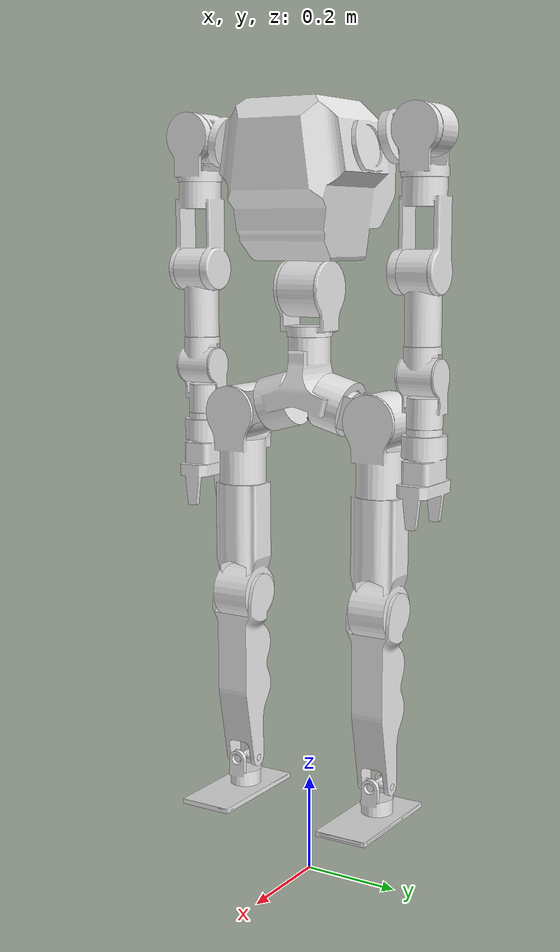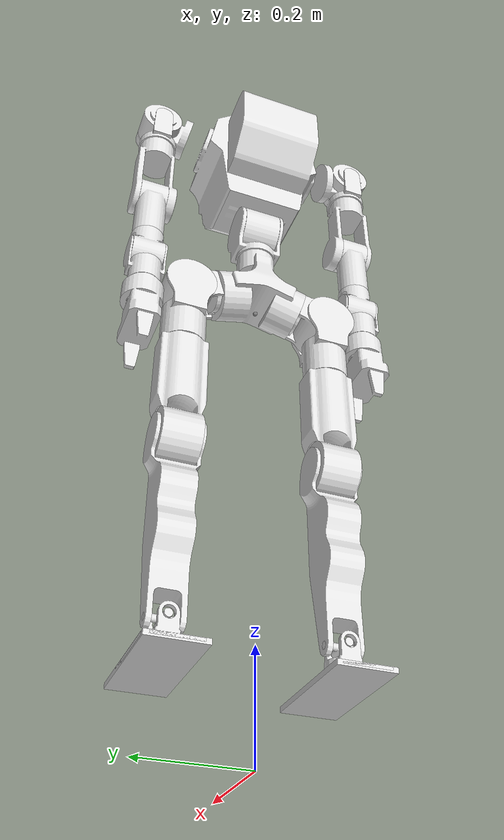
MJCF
<?xml version='1.0' encoding='utf-8'?>
<mujoco model="RBH_SCH_v1">
  <compiler angle="radian" coordinate="local" />
  <visual>
    <headlight diffuse="0.6 0.6 0.6" ambient="0.3 0.3 0.3" specular="0 0 0" />
    <rgba haze="0.15 0.25 0.35 1" />
    <global azimuth="120" elevation="-20" />
  </visual>
  <asset>
    <texture type="skybox" builtin="gradient" rgb1="0.3 0.5 0.7" rgb2="0 0 0" width="512" height="3072" />
    <texture type="2d" name="groundplane" builtin="checker" mark="edge" rgb1="0.2 0.3 0.4" rgb2="0.1 0.2 0.3" markrgb="0.8 0.8 0.8" width="300" height="300" />
    <material name="groundplane" texture="groundplane" texuniform="true" texrepeat="5 5" reflectance="0.2" />
    <material name="robot" rgba="0.9 0.9 0.9 1" shininess="0.3" specular="0.3" />
    <mesh name="pelvis_mesh" file="../meshes/RBH_SCH_v1/RBH_SCH_v1_CenterPelvis.STL" />
    <mesh name="right_hip_pitch_link_mesh" file="../meshes/RBH_SCH_v1/RBH_SCH_v1_Pelvis_R.STL" />
    <mesh name="right_hip_roll_link_mesh" file="../meshes/RBH_SCH_v1/RBH_SCH_v1_Hip_R.STL" />
    <mesh name="right_hip_yaw_link_mesh" file="../meshes/RBH_SCH_v1/RBH_SCH_v1_Thigh_R.STL" />
    <mesh name="right_knee_pitch_link_mesh" file="../meshes/RBH_SCH_v1/RBH_SCH_v1_Calf_R.STL" />
    <mesh name="right_ankle_pitch_link_mesh" file="../meshes/RBH_SCH_v1/RBH_SCH_v1_Ankle_R.STL" />
    <mesh name="right_ankle_roll_link_mesh" file="../meshes/RBH_SCH_v1/RBH_SCH_v1_Foot_R.STL" />
    <mesh name="left_hip_pitch_link_mesh" file="../meshes/RBH_SCH_v1/RBH_SCH_v1_Pelvis_L.STL" />
    <mesh name="left_hip_roll_link_mesh" file="../meshes/RBH_SCH_v1/RBH_SCH_v1_Hip_L.STL" />
    <mesh name="left_hip_yaw_link_mesh" file="../meshes/RBH_SCH_v1/RBH_SCH_v1_Thigh_L.STL" />
    <mesh name="left_knee_pitch_link_mesh" file="../meshes/RBH_SCH_v1/RBH_SCH_v1_Calf_L.STL" />
    <mesh name="left_ankle_pitch_link_mesh" file="../meshes/RBH_SCH_v1/RBH_SCH_v1_Ankle_L.STL" />
    <mesh name="left_ankle_roll_link_mesh" file="../meshes/RBH_SCH_v1/RBH_SCH_v1_Foot_L.STL" />
    <mesh name="waist_yaw_link_mesh" file="../meshes/RBH_SCH_v1/RBH_SCH_v1_WaistYaw.STL" />
    <mesh name="torso_link_mesh" file="../meshes/RBH_SCH_v1/RBH_SCH_v1_Body.STL" />
    <mesh name="right_shoulder_pitch_link_mesh" file="../meshes/RBH_SCH_v1/RBH_SCH_v1_ShoulderPitch_R.STL" />
    <mesh name="right_shoulder_roll_link_mesh" file="../meshes/RBH_SCH_v1/RBH_SCH_v1_ShoulderRoll_R.STL" />
    <mesh name="right_shoulder_yaw_link_mesh" file="../meshes/RBH_SCH_v1/RBH_SCH_v1_ShoulderYaw_R.STL" />
    <mesh name="right_elbow_pitch_link_mesh" file="../meshes/RBH_SCH_v1/RBH_SCH_v1_Elbow_R.STL" />
    <mesh name="right_wrist_yaw_link_mesh" file="../meshes/RBH_SCH_v1/RBH_SCH_v1_WristYaw_R.STL" />
    <mesh name="right_wrist_pitch_link_mesh" file="../meshes/RBH_SCH_v1/RBH_SCH_v1_WristPitch_R.STL" />
    <mesh name="right_wrist_yaw2_link_mesh" file="../meshes/RBH_SCH_v1/RBH_SCH_v1_WristYaw2_R.STL" />
    <mesh name="left_shoulder_pitch_link_mesh" file="../meshes/RBH_SCH_v1/RBH_SCH_v1_ShoulderPitch_L.STL" />
    <mesh name="left_shoulder_roll_link_mesh" file="../meshes/RBH_SCH_v1/RBH_SCH_v1_ShoulderRoll_L.STL" />
    <mesh name="left_shoulder_yaw_link_mesh" file="../meshes/RBH_SCH_v1/RBH_SCH_v1_ShoulderYaw_L.STL" />
    <mesh name="left_elbow_pitch_link_mesh" file="../meshes/RBH_SCH_v1/RBH_SCH_v1_Elbow_L.STL" />
    <mesh name="left_wrist_yaw_link_mesh" file="../meshes/RBH_SCH_v1/RBH_SCH_v1_WristYaw_L.STL" />
    <mesh name="left_wrist_pitch_link_mesh" file="../meshes/RBH_SCH_v1/RBH_SCH_v1_WristPitch_L.STL" />
    <mesh name="left_wrist_yaw2_link_mesh" file="../meshes/RBH_SCH_v1/RBH_SCH_v1_WristYaw2_L.STL" />
  </asset>
  <default>
    <joint damping="0" armature="0.03" />
    <geom friction="1.2 0.005 0.0001" solref="0.02 1" solimp="0.9 0.95 0.001" material="robot" />
  </default>
  <worldbody>
    <light pos="0 0 1.5" dir="0 0 -1" directional="true" />
    <body name="pelvis" pos="0 0 1">
      <freejoint name="root" />
      <inertial pos="-0.00025 0.0 0.00679" mass="4.94274" fullinertia="0.032293 0.017582 0.022194 -0.000000 -0.000062 0.000001" />
      <geom name="pelvis_collision" type="mesh" mesh="pelvis_mesh" contype="1" conaffinity="0" />
      <site name="PelvisIMU" pos="0 0 -0.048" />
      <body name="right_hip_pitch_link" pos="0.0 -0.1603 -0.043">
        <joint name="right_hip_pitch_joint" type="hinge" axis="0 0.966 0.259" range="-2.6180 2.6180" armature="0.115659" />
        <inertial pos="-0.00875 0.0008 -0.00114" mass="2.25728" fullinertia="0.003686 0.003248 0.003180 0.000015 -0.000014 0.000026" />
        <geom name="right_hip_pitch_link_collision" type="mesh" mesh="right_hip_pitch_link_mesh" contype="1" conaffinity="0" />
        <body name="right_hip_roll_link" pos="0.0 0.0 0.0">
          <joint name="right_hip_roll_joint" type="hinge" axis="1 0 0" range="-2.3562 0.4800" armature="0.115659" />
          <inertial pos="-0.00019 0.0 -0.11235" mass="1.69514" fullinertia="0.001841 0.001827 0.001917 0.000000 -0.000007 -0.000000" />
          <geom name="right_hip_roll_link_collision" type="mesh" mesh="right_hip_roll_link_mesh" contype="1" conaffinity="0" />
          <body name="right_hip_yaw_link" pos="0.0 0.0 -0.378">
            <joint name="right_hip_yaw_joint" type="hinge" axis="0 0 1" range="-2.6180 2.6180" armature="0.047529" />
            <inertial pos="0.0003 -0.00578 0.02455" mass="2.41833" fullinertia="0.010971 0.011379 0.003241 0.000004 0.000084 0.000330" />
            <geom name="right_hip_yaw_link_collision" type="mesh" mesh="right_hip_yaw_link_mesh" contype="1" conaffinity="0" />
            <body name="right_knee_pitch_link" pos="0.0 0.0 0.0">
              <joint name="right_knee_pitch_joint" type="hinge" axis="0 1 0" range="-0.0873 2.1817" armature="0.115659" />
              <inertial pos="-0.00426 0.00057 -0.1723" mass="3.3053" fullinertia="0.022720 0.023141 0.004393 -0.000103 0.001182 0.000494" />
              <geom name="right_knee_pitch_link_collision" type="mesh" mesh="right_knee_pitch_link_mesh" contype="1" conaffinity="0" />
              <body name="right_ankle_pitch_link" pos="0.0 0.0 -0.36">
                <joint name="right_ankle_pitch_joint" type="hinge" axis="0 1 0" range="-1.0472 0.6981" armature="0.0306881" />
                <inertial pos="0.0 0.0 0.0" mass="0.03291" fullinertia="0.000004 0.000003 0.000006 0.000000 0.000000 0.000000" />
                <geom name="right_ankle_pitch_link_collision" type="mesh" mesh="right_ankle_pitch_link_mesh" contype="1" conaffinity="0" />
                <body name="right_ankle_roll_link" pos="0.0 0.0 0.0">
                  <joint name="right_ankle_roll_joint" type="hinge" axis="1 0 0" range="-0.3491 0.3491" armature="0.0298952" />
                  <inertial pos="0.00696 5e-05 -0.04277" mass="0.74659" fullinertia="0.000872 0.002371 0.002438 -0.000002 -0.000253 -0.000001" />
                  <geom name="right_ankle_roll_link_collision" type="mesh" mesh="right_ankle_roll_link_mesh" contype="0" conaffinity="0" />
                  <geom name="right_ankle_roll_link_sole" type="box" pos="0.03 0 -0.0645" size="0.12 0.055 0.005" contype="1" conaffinity="1" />
                  <site name="RFT" pos="0 0 -0.05" />
                </body>
              </body>
            </body>
          </body>
        </body>
      </body>
      <body name="left_hip_pitch_link" pos="0.0 0.1603 -0.043">
        <joint name="left_hip_pitch_joint" type="hinge" axis="0 0.966 -0.259" range="-2.6180 2.6180" armature="0.115659" />
        <inertial pos="-0.00875 -0.0008 -0.00114" mass="2.25728" fullinertia="0.003686 0.003248 0.003180 -0.000015 -0.000014 -0.000026" />
        <geom name="left_hip_pitch_link_collision" type="mesh" mesh="left_hip_pitch_link_mesh" contype="1" conaffinity="0" />
        <body name="left_hip_roll_link" pos="0.0 0.0 0.0">
          <joint name="left_hip_roll_joint" type="hinge" axis="1 0 0" range="-0.4800 2.3562" armature="0.115659" />
          <inertial pos="-0.00019 0.0 -0.11235" mass="1.69514" fullinertia="0.001841 0.001827 0.001917 -0.000000 -0.000007 0.000000" />
          <geom name="left_hip_roll_link_collision" type="mesh" mesh="left_hip_roll_link_mesh" contype="1" conaffinity="0" />
          <body name="left_hip_yaw_link" pos="0.0 0.0 -0.378">
            <joint name="left_hip_yaw_joint" type="hinge" axis="0 0 1" range="-2.6180 2.6180" armature="0.047529" />
            <inertial pos="0.0003 0.00578 0.02455" mass="2.41833" fullinertia="0.010971 0.011379 0.003241 -0.000004 0.000084 -0.000330" />
            <geom name="left_hip_yaw_link_collision" type="mesh" mesh="left_hip_yaw_link_mesh" contype="1" conaffinity="0" />
            <body name="left_knee_pitch_link" pos="0.0 0.0 0.0">
              <joint name="left_knee_pitch_joint" type="hinge" axis="0 1 0" range="-0.0873 2.1817" armature="0.115659" />
              <inertial pos="-0.00426 -0.00057 -0.1723" mass="3.3053" fullinertia="0.022720 0.023141 0.004393 0.000103 0.001182 -0.000494" />
              <geom name="left_knee_pitch_link_collision" type="mesh" mesh="left_knee_pitch_link_mesh" contype="1" conaffinity="0" />
              <body name="left_ankle_pitch_link" pos="0.0 0.0 -0.36">
                <joint name="left_ankle_pitch_joint" type="hinge" axis="0 1 0" range="-1.0472 0.6981" armature="0.0306881" />
                <inertial pos="0.0 0.0 0.0" mass="0.03291" fullinertia="0.000004 0.000003 0.000006 0.000000 0.000000 0.000000" />
                <geom name="left_ankle_pitch_link_collision" type="mesh" mesh="left_ankle_pitch_link_mesh" contype="1" conaffinity="0" />
                <body name="left_ankle_roll_link" pos="0.0 0.0 0.0">
                  <joint name="left_ankle_roll_joint" type="hinge" axis="1 0 0" range="-0.3491 0.3491" armature="0.0298952" />
                  <inertial pos="0.00696 -5e-05 -0.04277" mass="0.74659" fullinertia="0.000872 0.002371 0.002438 0.000002 -0.000253 0.000001" />
                  <geom name="left_ankle_roll_link_collision" type="mesh" mesh="left_ankle_roll_link_mesh" contype="0" conaffinity="0" />
                  <geom name="left_ankle_roll_link_sole" type="box" pos="0.03 0 -0.0645" size="0.12 0.055 0.005" contype="1" conaffinity="1" />
                  <site name="LFT" pos="0 0 -0.05" />
                </body>
              </body>
            </body>
          </body>
        </body>
      </body>
      <body name="waist_yaw_link" pos="0.0 0.0 0.2065">
        <joint name="waist_yaw_joint" type="hinge" axis="0 0 1" range="-3.4034 3.4034" armature="0.142433" />
        <inertial pos="4e-05 0.00501 -0.03832" mass="0.3343" fullinertia="0.001104 0.000789 0.000726 -0.000001 0.000000 0.000063" />
        <geom name="waist_yaw_link_collision" type="mesh" mesh="waist_yaw_link_mesh" contype="1" conaffinity="1" />
        <body name="torso_link" pos="0.0 0.0 0.0">
          <joint name="waist_pitch_joint" type="hinge" axis="0 1 0" range="-0.8727 1.3963" armature="2.13751" />
          <inertial pos="-0.00863 0.00108 0.19776" mass="14.37879" fullinertia="0.267606 0.218688 0.169464 0.000066 -0.001507 -0.002393" />
          <geom name="torso_link_collision" type="mesh" mesh="torso_link_mesh" contype="1" conaffinity="1" />
          <body name="right_shoulder_pitch_link" pos="0.008 -0.2538 0.2942">
            <joint name="right_shoulder_pitch_joint" type="hinge" axis="0 0.9848 -0.1736" range="-2.9671 2.9671" armature="0.837592" />
            <inertial pos="-0.00074 0.00032 3e-05" mass="1.17628" fullinertia="0.001454 0.001187 0.001181 -0.000004 -0.000001 -0.000001" />
            <geom name="right_shoulder_pitch_link_collision" type="mesh" mesh="right_shoulder_pitch_link_mesh" contype="1" conaffinity="1" />
            <body name="right_shoulder_roll_link" pos="0.0 0.0 0.0">
              <joint name="right_shoulder_roll_joint" type="hinge" axis="1 0 0" range="-2.9671 0.2618" armature="0.257807" />
              <inertial pos="-0.00137 0.0 -0.0347" mass="0.30056" fullinertia="0.000654 0.000874 0.000591 0.000000 -0.000009 -0.000000" />
              <geom name="right_shoulder_roll_link_collision" type="mesh" mesh="right_shoulder_roll_link_mesh" contype="1" conaffinity="1" />
              <body name="right_shoulder_yaw_link" pos="0.01 0.0 -0.2584">
                <joint name="right_shoulder_yaw_joint" type="hinge" axis="0 0 1" range="-2.9671 2.9671" armature="0.139643" />
                <inertial pos="0.00119 0.00289 -0.12374" mass="1.14409" fullinertia="0.004074 0.003857 0.001212 0.000031 -0.000178 -0.000457" />
                <geom name="right_shoulder_yaw_link_collision" type="mesh" mesh="right_shoulder_yaw_link_mesh" contype="1" conaffinity="1" />
                <body name="right_elbow_pitch_link" pos="0.0 0.0 0.0">
                  <joint name="right_elbow_pitch_joint" type="hinge" axis="0 1 0" range="-2.2689 1.5708" armature="0.139643" />
                  <inertial pos="-0.00437 0.00754 -0.04792" mass="1.73393" fullinertia="0.007287 0.007314 0.001460 0.000057 0.000476 0.000617" />
                  <geom name="right_elbow_pitch_link_collision" type="mesh" mesh="right_elbow_pitch_link_mesh" contype="1" conaffinity="1" />
                  <body name="right_wrist_yaw_link" pos="-0.01 0.0 -0.1948">
                    <joint name="right_wrist_yaw_joint" type="hinge" axis="0 0 1" range="-1.3963 1.3963" armature="0.071961" />
                    <inertial pos="0.0 0.00334 0.00017" mass="0.58364" fullinertia="0.000351 0.000361 0.000350 -0.000000 -0.000000 -0.000000" />
                    <geom name="right_wrist_yaw_link_collision" type="mesh" mesh="right_wrist_yaw_link_mesh" contype="1" conaffinity="1" />
                    <body name="right_wrist_pitch_link" pos="0.0 0.0 0.0">
                      <joint name="right_wrist_pitch_joint" type="hinge" axis="0 1 0" range="-1.5708 1.5708" armature="0.071961" />
                      <inertial pos="-0.011 -0.00047 -0.07726" mass="0.69785" fullinertia="0.000892 0.000823 0.000537 0.000009 0.000053 0.000056" />
                      <geom name="right_wrist_pitch_link_collision" type="mesh" mesh="right_wrist_pitch_link_mesh" contype="1" conaffinity="1" />
                      <body name="right_wrist_yaw2_link" pos="-0.012 0.0 -0.0988">
                        <joint name="right_wrist_yaw2_joint" type="hinge" axis="0 0 1" range="-2.9671 2.9671" armature="0.071961" />
                        <inertial pos="0.00011 0.0016 -0.08983" mass="0.87516" fullinertia="0.001965 0.001455 0.001141 -0.000044 0.000006 0.000004" />
                        <geom name="right_wrist_yaw2_link_collision" type="mesh" mesh="right_wrist_yaw2_link_mesh" contype="1" conaffinity="1" />
                      </body>
                    </body>
                  </body>
                </body>
              </body>
            </body>
          </body>
          <body name="left_shoulder_pitch_link" pos="0.008 0.2538 0.2942">
            <joint name="left_shoulder_pitch_joint" type="hinge" axis="0 0.9848 0.1736" range="-2.9671 2.9671" armature="0.837592" />
            <inertial pos="-0.00074 -0.00032 3e-05" mass="1.17628" fullinertia="0.001454 0.001187 0.001181 0.000004 -0.000001 0.000001" />
            <geom name="left_shoulder_pitch_link_collision" type="mesh" mesh="left_shoulder_pitch_link_mesh" contype="1" conaffinity="1" />
            <body name="left_shoulder_roll_link" pos="0.0 0.0 0.0">
              <joint name="left_shoulder_roll_joint" type="hinge" axis="1 0 0" range="-0.2618 2.9671" armature="0.257807" />
              <inertial pos="-0.00137 0.0 -0.0347" mass="0.30056" fullinertia="0.000654 0.000874 0.000591 -0.000000 -0.000009 0.000000" />
              <geom name="left_shoulder_roll_link_collision" type="mesh" mesh="left_shoulder_roll_link_mesh" contype="1" conaffinity="1" />
              <body name="left_shoulder_yaw_link" pos="0.01 0.0 -0.2584">
                <joint name="left_shoulder_yaw_joint" type="hinge" axis="0 0 1" range="-2.9671 2.9671" armature="0.139643" />
                <inertial pos="0.00119 -0.00289 -0.12374" mass="1.14409" fullinertia="0.004074 0.003857 0.001212 -0.000031 -0.000178 0.000457" />
                <geom name="left_shoulder_yaw_link_collision" type="mesh" mesh="left_shoulder_yaw_link_mesh" contype="1" conaffinity="1" />
                <body name="left_elbow_pitch_link" pos="0.0 0.0 0.0">
                  <joint name="left_elbow_pitch_joint" type="hinge" axis="0 1 0" range="-2.2689 1.5708" armature="0.139643" />
                  <inertial pos="-0.00437 -0.00754 -0.04792" mass="1.73393" fullinertia="0.007287 0.007314 0.001460 -0.000057 0.000476 -0.000617" />
                  <geom name="left_elbow_pitch_link_collision" type="mesh" mesh="left_elbow_pitch_link_mesh" contype="1" conaffinity="1" />
                  <body name="left_wrist_yaw_link" pos="-0.01 0.0 -0.1948">
                    <joint name="left_wrist_yaw_joint" type="hinge" axis="0 0 1" range="-1.3963 1.3963" armature="0.071961" />
                    <inertial pos="0.0 -0.00334 0.00017" mass="0.58364" fullinertia="0.000351 0.000361 0.000350 0.000000 -0.000000 0.000000" />
                    <geom name="left_wrist_yaw_link_collision" type="mesh" mesh="left_wrist_yaw_link_mesh" contype="1" conaffinity="1" />
                    <body name="left_wrist_pitch_link" pos="0.0 0.0 0.0">
                      <joint name="left_wrist_pitch_joint" type="hinge" axis="0 1 0" range="-1.5708 1.5708" armature="0.071961" />
                      <inertial pos="-0.011 0.00047 -0.07726" mass="0.69785" fullinertia="0.000892 0.000823 0.000537 -0.000009 0.000053 -0.000056" />
                      <geom name="left_wrist_pitch_link_collision" type="mesh" mesh="left_wrist_pitch_link_mesh" contype="1" conaffinity="1" />
                      <body name="left_wrist_yaw2_link" pos="-0.012 0.0 -0.0988">
                        <joint name="left_wrist_yaw2_joint" type="hinge" axis="0 0 1" range="-2.9671 2.9671" armature="0.071961" />
                        <inertial pos="0.00011 -0.0016 -0.08983" mass="0.87516" fullinertia="0.001965 0.001455 0.001141 0.000044 0.000006 -0.000004" />
                        <geom name="left_wrist_yaw2_link_collision" type="mesh" mesh="left_wrist_yaw2_link_mesh" contype="1" conaffinity="1" />
                      </body>
                    </body>
                  </body>
                </body>
              </body>
            </body>
          </body>
        </body>
      </body>
    </body>
  </worldbody>
  <sensor>
    <accelerometer name="pelvis_linacc" site="PelvisIMU" noise="1e-2" cutoff="157" />
    <gyro name="pelvis_angvel" site="PelvisIMU" noise="5e-4" cutoff="34.9" />
    <force name="RFT_force" site="RFT" />
    <torque name="RFT_torque" site="RFT" />
    <force name="LFT_force" site="LFT" />
    <torque name="LFT_torque" site="LFT" />
  </sensor>
  <actuator>
    <motor name="motor_right_hip_pitch_joint" joint="right_hip_pitch_joint" gear="1" ctrllimited="true" ctrlrange="-200.0 200.0" />
    <motor name="motor_right_hip_roll_joint" joint="right_hip_roll_joint" gear="1" ctrllimited="true" ctrlrange="-200.0 200.0" />
    <motor name="motor_right_hip_yaw_joint" joint="right_hip_yaw_joint" gear="1" ctrllimited="true" ctrlrange="-100.0 100.0" />
    <motor name="motor_right_knee_pitch_joint" joint="right_knee_pitch_joint" gear="1" ctrllimited="true" ctrlrange="-270.0 270.0" />
    <motor name="motor_right_ankle_pitch_joint" joint="right_ankle_pitch_joint" gear="1" ctrllimited="true" ctrlrange="-100.0 100.0" />
    <motor name="motor_right_ankle_roll_joint" joint="right_ankle_roll_joint" gear="1" ctrllimited="true" ctrlrange="-70.0 70.0" />
    <motor name="motor_left_hip_pitch_joint" joint="left_hip_pitch_joint" gear="1" ctrllimited="true" ctrlrange="-200.0 200.0" />
    <motor name="motor_left_hip_roll_joint" joint="left_hip_roll_joint" gear="1" ctrllimited="true" ctrlrange="-200.0 200.0" />
    <motor name="motor_left_hip_yaw_joint" joint="left_hip_yaw_joint" gear="1" ctrllimited="true" ctrlrange="-100.0 100.0" />
    <motor name="motor_left_knee_pitch_joint" joint="left_knee_pitch_joint" gear="1" ctrllimited="true" ctrlrange="-270.0 270.0" />
    <motor name="motor_left_ankle_pitch_joint" joint="left_ankle_pitch_joint" gear="1" ctrllimited="true" ctrlrange="-100.0 100.0" />
    <motor name="motor_left_ankle_roll_joint" joint="left_ankle_roll_joint" gear="1" ctrllimited="true" ctrlrange="-70.0 70.0" />
    <motor name="motor_waist_yaw_joint" joint="waist_yaw_joint" gear="1" ctrllimited="true" ctrlrange="-50.0 50.0" />
    <motor name="motor_waist_pitch_joint" joint="waist_pitch_joint" gear="1" ctrllimited="true" ctrlrange="-200.0 200.0" />
    <motor name="motor_right_shoulder_pitch_joint" joint="right_shoulder_pitch_joint" gear="1" ctrllimited="true" ctrlrange="-150.0 150.0" />
    <motor name="motor_right_shoulder_roll_joint" joint="right_shoulder_roll_joint" gear="1" ctrllimited="true" ctrlrange="-100.0 100.0" />
    <motor name="motor_right_shoulder_yaw_joint" joint="right_shoulder_yaw_joint" gear="1" ctrllimited="true" ctrlrange="-70.0 70.0" />
    <motor name="motor_right_elbow_pitch_joint" joint="right_elbow_pitch_joint" gear="1" ctrllimited="true" ctrlrange="-70.0 70.0" />
    <motor name="motor_right_wrist_yaw_joint" joint="right_wrist_yaw_joint" gear="1" ctrllimited="true" ctrlrange="-30.0 30.0" />
    <motor name="motor_right_wrist_pitch_joint" joint="right_wrist_pitch_joint" gear="1" ctrllimited="true" ctrlrange="-30.0 30.0" />
    <motor name="motor_right_wrist_yaw2_joint" joint="right_wrist_yaw2_joint" gear="1" ctrllimited="true" ctrlrange="-30.0 30.0" />
    <motor name="motor_left_shoulder_pitch_joint" joint="left_shoulder_pitch_joint" gear="1" ctrllimited="true" ctrlrange="-150.0 150.0" />
    <motor name="motor_left_shoulder_roll_joint" joint="left_shoulder_roll_joint" gear="1" ctrllimited="true" ctrlrange="-100.0 100.0" />
    <motor name="motor_left_shoulder_yaw_joint" joint="left_shoulder_yaw_joint" gear="1" ctrllimited="true" ctrlrange="-70.0 70.0" />
    <motor name="motor_left_elbow_pitch_joint" joint="left_elbow_pitch_joint" gear="1" ctrllimited="true" ctrlrange="-70.0 70.0" />
    <motor name="motor_left_wrist_yaw_joint" joint="left_wrist_yaw_joint" gear="1" ctrllimited="true" ctrlrange="-30.0 30.0" />
    <motor name="motor_left_wrist_pitch_joint" joint="left_wrist_pitch_joint" gear="1" ctrllimited="true" ctrlrange="-30.0 30.0" />
    <motor name="motor_left_wrist_yaw2_joint" joint="left_wrist_yaw2_joint" gear="1" ctrllimited="true" ctrlrange="-30.0 30.0" />
  </actuator>
</mujoco>
